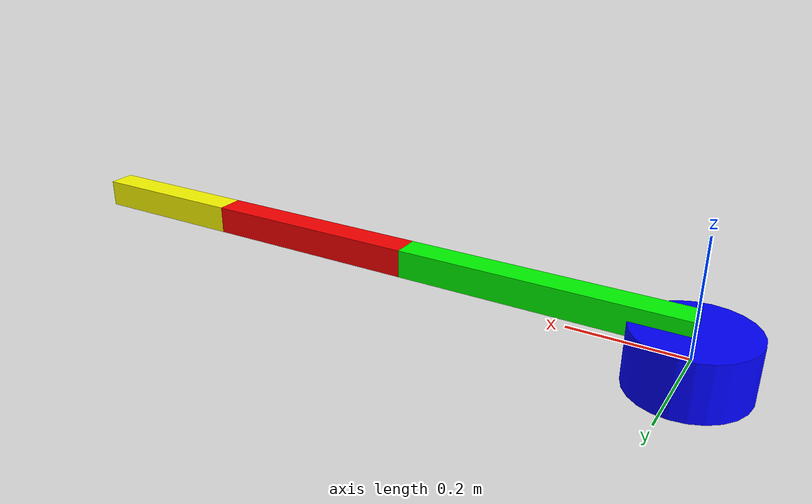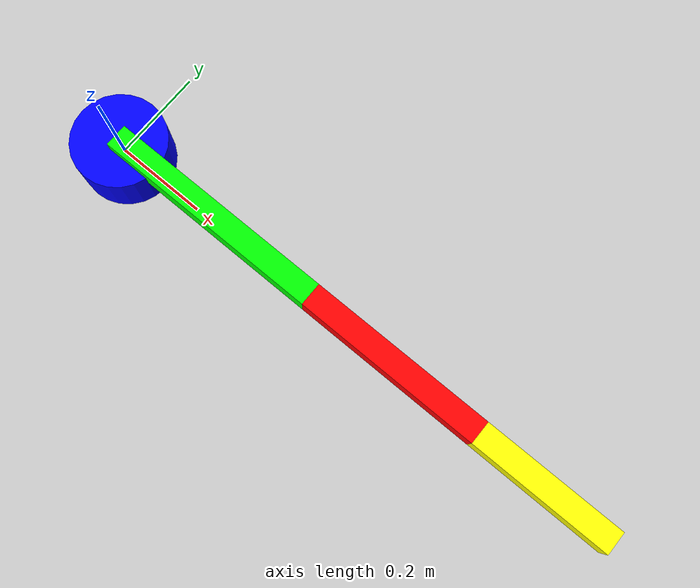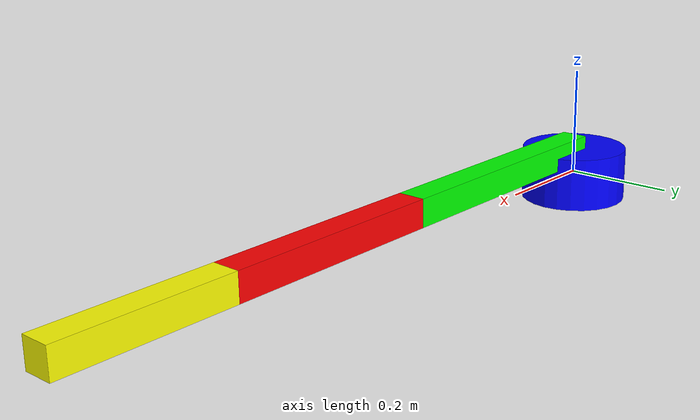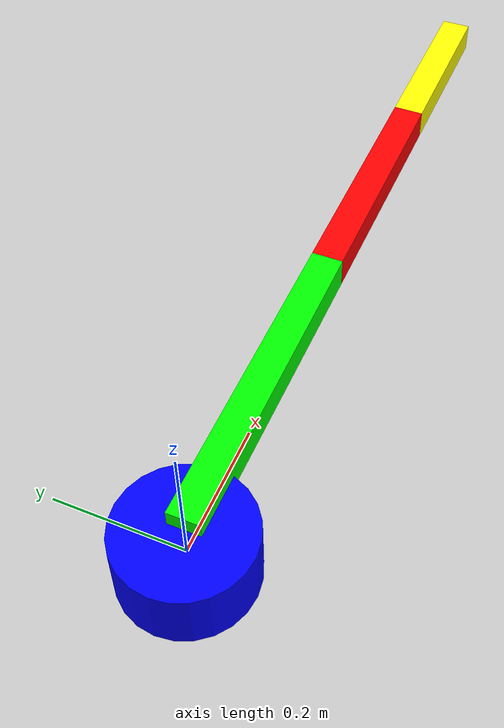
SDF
<?xml version="1.0" ?>
<sdf version="1.8">
  <world name="robot_world">
    <plugin filename="gz-sim-physics-system" name="gz::sim::systems::Physics"/>
    <plugin filename="gz-sim-scene-broadcaster-system" name="gz::sim::systems::SceneBroadcaster"/>
    <plugin filename="gz-sim-user-commands-system" name="gz::sim::systems::UserCommands"/>

    <light type="directional" name="sun">
      <cast_shadows>true</cast_shadows>
      <pose>0 0 10 0 0 0</pose>
      <diffuse>0.8 0.8 0.8 1</diffuse>
      <specular>0.2 0.2 0.2 1</specular>
      <direction>-0.5 0.1 -0.9</direction>
    </light>

    <model name="rrr_kol">
      <joint name="world_fixed" type="fixed">
        <parent>world</parent>
        <child>base_link</child>
      </joint>

      <link name="base_link">
        <pose>0 0 0 0 0 0</pose>
        <visual name="v_base">
          <geometry><cylinder><radius>0.1</radius><length>0.1</length></cylinder></geometry>
          <material><ambient>0 0 1 1</ambient><diffuse>0 0 1 1</diffuse></material> </visual>
      </link>

      <link name="link1">
        <pose>0 0 0.05 0 0 0</pose>
        <visual name="v1">
          <pose>0.25 0 0 0 0 0</pose>
          <geometry><box><size>0.5 0.05 0.05</size></box></geometry>
          <material><ambient>0 1 0 1</ambient><diffuse>0 1 0 1</diffuse></material> </visual>
      </link>
      <joint name="j1" type="revolute">
        <parent>base_link</parent>
        <child>link1</child>
        <axis>
          <xyz>0 0 1</xyz>
          <limit><lower>-3.14</lower><upper>3.14</upper></limit> </axis>
      </joint>

      <link name="link2">
        <pose>0.5 0 0.05 0 0 0</pose>
        <visual name="v2">
          <pose>0.2 0 0 0 0 0</pose>
          <geometry><box><size>0.4 0.05 0.05</size></box></geometry>
          <material><ambient>1 0 0 1</ambient><diffuse>1 0 0 1</diffuse></material> </visual>
      </link>
      <joint name="j2" type="revolute">
        <parent>link1</parent>
        <child>link2</child>
        <axis>
          <xyz>0 0 1</xyz>
          <limit><lower>-3.14</lower><upper>3.14</upper></limit>
        </axis>
      </joint>

      <link name="link3">
        <pose>0.9 0 0.05 0 0 0</pose>
        <visual name="v3">
          <pose>0.15 0 0 0 0 0</pose>
          <geometry><box><size>0.3 0.05 0.05</size></box></geometry>
          <material><ambient>1 1 0 1</ambient><diffuse>1 1 0 1</diffuse></material> </visual>
      </link>
      <joint name="j3" type="revolute">
        <parent>link2</parent>
        <child>link3</child>
        <axis>
          <xyz>0 0 1</xyz>
          <limit><lower>-3.14</lower><upper>3.14</upper></limit>
        </axis>
      </joint>
    </model>
  </world>
</sdf>
